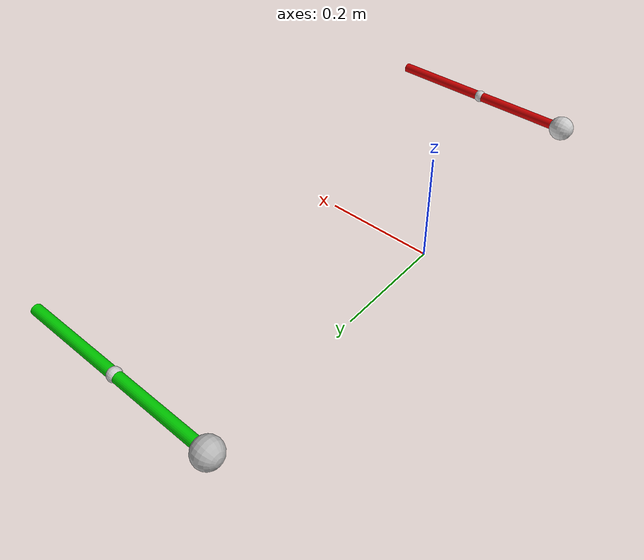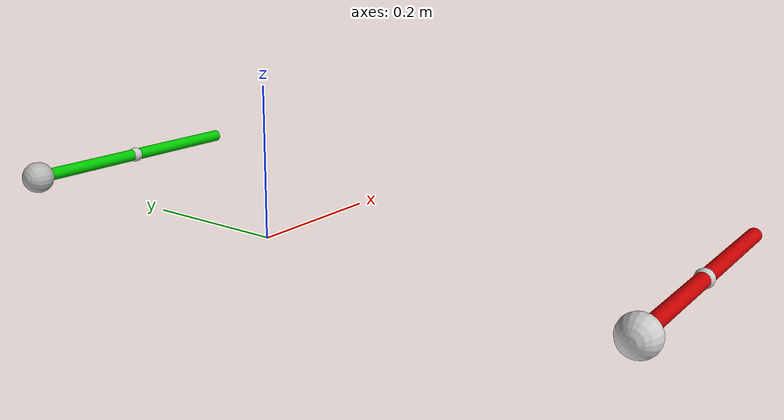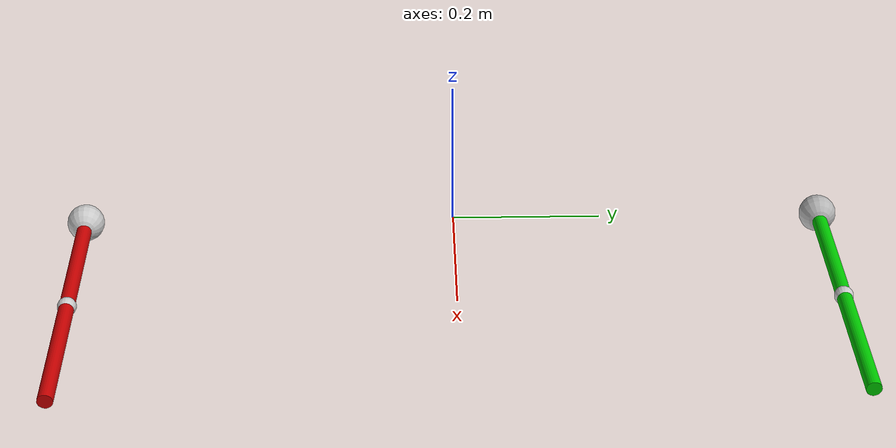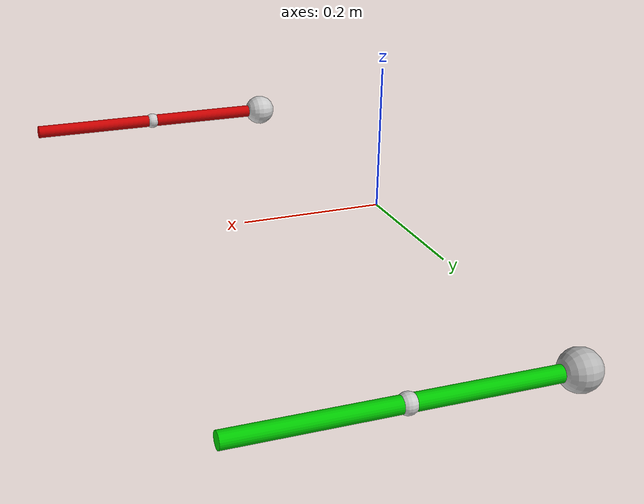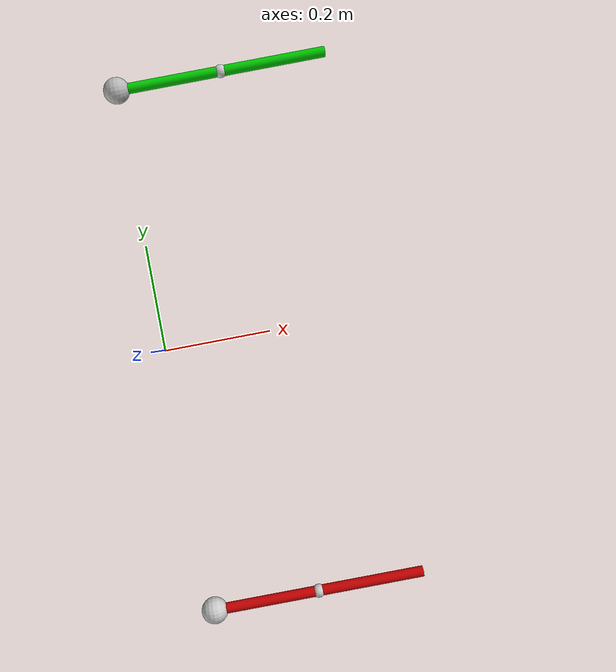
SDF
<?xml version="1.0" ?>
<sdf version="1.6">
  <world name="default">
    <!-- Physics -->
    <physics name="fast" type="ignored">
      <real_time_factor>0</real_time_factor>
    </physics>
    <plugin
      filename="gz-sim-physics-system"
      name="gz::sim::systems::Physics">
    </plugin>

    <!-- Scene -->
    <plugin
      filename="gz-sim-scene-broadcaster-system"
      name="gz::sim::systems::SceneBroadcaster">
    </plugin>
    <scene>
      <ambient>0.4 0.4 0.4</ambient>
      <grid>false</grid>
    </scene>

    <!-- Illumination -->
    <light type="directional" name="sun">
      <cast_shadows>false</cast_shadows>
      <pose>5 5 5 0 0 0</pose>
      <diffuse>0.8 0.8 0.8 1</diffuse>
      <specular>0.2 0.2 0.2 1</specular>
      <attenuation>
        <range>1000</range>
        <constant>0.9</constant>
        <linear>0.01</linear>
        <quadratic>0.001</quadratic>
      </attenuation>
      <direction>-1 -1 -1</direction>
    </light>

    <!-- Models -->
    <!-- Position control test -->
    <model name="RR_position_control">
      <pose>0 -0.5 0 0 1.5708 0</pose>
      <!-- Fix To World -->
      <joint name="RR_position_control_world" type="fixed">
        <parent>world</parent>
        <child>RR_position_control_link0</child>
      </joint>
      <!-- Links -->
      <link name="RR_position_control_link0">
        <collision name="RR_position_control_link0_collision_0">
          <geometry>
            <sphere>
              <radius>0.025</radius>
            </sphere>
          </geometry>
        </collision>
        <visual name="RR_position_control_link0_visual_0">
          <geometry>
            <sphere>
              <radius>0.025</radius>
            </sphere>
          </geometry>
          <material>
            <ambient>0.5 0.5 0.5 1</ambient>
            <diffuse>0.8 0.8 0.8 1</diffuse>
            <specular>0.8 0.8 0.8 1</specular>
          </material>
        </visual>
      </link>
      <link name="RR_position_control_link1">
        <pose relative_to="RR_position_control_joint1">0 0 0.1 0 0 0</pose>
        <collision name="RR_position_control_link1_collision_0">
          <geometry>
            <cylinder>
              <radius>0.01</radius>
              <length>0.2</length>
            </cylinder>
          </geometry>
        </collision>
        <collision name="RR_position_control_link1_collision_1">
          <geometry>
            <sphere>
              <radius>0.0125</radius>
            </sphere>
          </geometry>
        </collision>
        <visual name="RR_position_control_link1_visual_0">
          <geometry>
            <cylinder>
              <radius>0.01</radius>
              <length>0.2</length>
            </cylinder>
          </geometry>
          <material>
            <ambient>0.5 0 0 1</ambient>
            <diffuse>0.8 0 0 1</diffuse>
            <specular>0.8 0 0 1</specular>
          </material>
        </visual>
        <visual name="RR_position_control_link1_visual_1">
          <pose relative_to="RR_position_control_joint1">0 0 0.2 0 0 0</pose>
          <geometry>
            <sphere>
              <radius>0.0125</radius>
            </sphere>
          </geometry>
          <material>
            <ambient>0.5 0.5 0.5 1</ambient>
            <diffuse>0.8 0.8 0.8 1</diffuse>
            <specular>0.8 0.8 0.8 1</specular>
          </material>
        </visual>
        <inertial>
          <mass>0.1</mass>
          <inertia>
            <ixx>0.0003358</ixx>
            <iyy>0.0003358</iyy>
            <izz>0.000005</izz>
          </inertia>
        </inertial>
      </link>
      <link name="RR_position_control_link2">
        <pose relative_to="RR_position_control_joint2">0 0 0.1 0 0 0</pose>
        <collision name="RR_position_control_link2_collision">
          <geometry>
            <cylinder>
              <radius>0.01</radius>
              <length>0.2</length>
            </cylinder>
          </geometry>
        </collision>
        <visual name="RR_position_control_link2_visual">
          <geometry>
            <cylinder>
              <radius>0.01</radius>
              <length>0.2</length>
            </cylinder>
          </geometry>
          <material>
            <ambient>0.5 0 0 1</ambient>
            <diffuse>0.8 0 0 1</diffuse>
            <specular>0.8 0 0 1</specular>
          </material>
        </visual>
        <inertial>
          <mass>0.1</mass>
          <inertia>
            <ixx>0.0003358</ixx>
            <iyy>0.0003358</iyy>
            <izz>0.000005</izz>
          </inertia>
        </inertial>
      </link>
      <!-- Joints -->
      <joint name="RR_position_control_joint1" type="revolute">
        <pose relative_to="RR_position_control_link0">0 0 0 0 0 0</pose>
        <parent>RR_position_control_link0</parent>
        <child>RR_position_control_link1</child>
        <axis>
          <xyz>1 0 0</xyz>
          <dynamics>
            <damping>0.5</damping>
          </dynamics>
        </axis>
      </joint>
      <joint name="RR_position_control_joint2" type="revolute">
        <pose relative_to="RR_position_control_link1">0 0 0.1 0 0 0</pose>
        <parent>RR_position_control_link1</parent>
        <child>RR_position_control_link2</child>
        <axis>
          <xyz>1 0 0</xyz>
          <dynamics>
            <damping>0.25</damping>
          </dynamics>
        </axis>
      </joint>
      <!-- Controller -->
      <plugin
        filename="gz-sim-joint-trajectory-controller-system"
        name="gz::sim::systems::JointTrajectoryController">
        <!-- Test a case where joint names do not follow the order specified in model -->
        <joint_name>RR_position_control_joint2</joint_name>
        <position_p_gain>25</position_p_gain>
        <position_i_gain>400</position_i_gain>
        <position_d_gain>0.1</position_d_gain>
        <position_i_min>-0.5</position_i_min>
        <position_i_max>0.5</position_i_max>
        <position_cmd_min>-5</position_cmd_min>
        <position_cmd_max>5</position_cmd_max>

        <joint_name>RR_position_control_joint1</joint_name>
        <position_p_gain>50</position_p_gain>
        <position_i_gain>600</position_i_gain>
        <position_d_gain>0.8</position_d_gain>
        <position_i_min>-1</position_i_min>
        <position_i_max>1</position_i_max>
        <position_cmd_min>-10</position_cmd_min>
        <position_cmd_max>10</position_cmd_max>
      </plugin>
    </model>

    <!-- Velocity control test -->
    <model name="RR_velocity_control">
      <pose>0 0.5 0 0 1.5708 0</pose>
      <!-- Fix To World -->
      <joint name="RR_velocity_control_world" type="fixed">
        <parent>world</parent>
        <child>RR_velocity_control_link0</child>
      </joint>
      <!-- Links -->
      <link name="RR_velocity_control_link0">
        <collision name="RR_velocity_control_link0_collision_0">
          <geometry>
            <sphere>
              <radius>0.025</radius>
            </sphere>
          </geometry>
          <material>
            <ambient>0.5 0.5 0.5 1</ambient>
            <diffuse>0.8 0.8 0.8 1</diffuse>
            <specular>0.8 0.8 0.8 1</specular>
          </material>
        </collision>
        <visual name="RR_velocity_control_link0_visual_0">
          <geometry>
            <sphere>
              <radius>0.025</radius>
            </sphere>
          </geometry>
        </visual>
      </link>
      <link name="RR_velocity_control_link1">
        <pose relative_to="RR_velocity_control_joint1">0 0 0.1 0 0 0</pose>
        <collision name="RR_velocity_control_link1_collision_0">
          <geometry>
            <cylinder>
              <radius>0.01</radius>
              <length>0.2</length>
            </cylinder>
          </geometry>
        </collision>
        <collision name="RR_velocity_control_link1_collision_1">
          <geometry>
            <sphere>
              <radius>0.0125</radius>
            </sphere>
          </geometry>
        </collision>
        <visual name="RR_velocity_control_link1_visual_0">
          <geometry>
            <cylinder>
              <radius>0.01</radius>
              <length>0.2</length>
            </cylinder>
          </geometry>
          <material>
            <ambient>0 0.5 0 1</ambient>
            <diffuse>0 0.8 0 1</diffuse>
            <specular>0 0.8 0 1</specular>
          </material>
        </visual>
        <visual name="RR_velocity_control_link1_visual_1">
          <pose relative_to="RR_velocity_control_joint1">0 0 0.2 0 0 0</pose>
          <geometry>
            <sphere>
              <radius>0.0125</radius>
            </sphere>
          </geometry>
          <material>
            <ambient>0.5 0.5 0.5 1</ambient>
            <diffuse>0.8 0.8 0.8 1</diffuse>
            <specular>0.8 0.8 0.8 1</specular>
          </material>
        </visual>
        <inertial>
          <mass>0.1</mass>
          <inertia>
            <ixx>0.0003358</ixx>
            <iyy>0.0003358</iyy>
            <izz>0.000005</izz>
          </inertia>
        </inertial>
      </link>
      <link name="RR_velocity_control_link2">
        <pose relative_to="RR_velocity_control_joint2">0 0 0.1 0 0 0</pose>
        <collision name="RR_velocity_control_link2_collision">
          <geometry>
            <cylinder>
              <radius>0.01</radius>
              <length>0.2</length>
            </cylinder>
          </geometry>
        </collision>
        <visual name="RR_velocity_control_link2_visual">
          <geometry>
            <cylinder>
              <radius>0.01</radius>
              <length>0.2</length>
            </cylinder>
          </geometry>
          <material>
            <ambient>0 0.5 0 1</ambient>
            <diffuse>0 0.8 0 1</diffuse>
            <specular>0 0.8 0 1</specular>
          </material>
        </visual>
        <inertial>
          <mass>0.1</mass>
          <inertia>
            <ixx>0.0003358</ixx>
            <iyy>0.0003358</iyy>
            <izz>0.000005</izz>
          </inertia>
        </inertial>
      </link>
      <!-- Joints -->
      <joint name="RR_velocity_control_joint1" type="revolute">
        <pose relative_to="RR_velocity_control_link0">0 0 0 0 0 0</pose>
        <parent>RR_velocity_control_link0</parent>
        <child>RR_velocity_control_link1</child>
        <axis>
          <xyz>1 0 0</xyz>
          <dynamics>
            <damping>0.02</damping>
          </dynamics>
        </axis>
      </joint>
      <joint name="RR_velocity_control_joint2" type="revolute">
        <pose relative_to="RR_velocity_control_link1">0 0 0.1 0 0 0</pose>
        <parent>RR_velocity_control_link1</parent>
        <child>RR_velocity_control_link2</child>
        <axis>
          <xyz>1 0 0</xyz>
          <dynamics>
            <damping>0.01</damping>
          </dynamics>
        </axis>
      </joint>
      <!-- Controller -->
      <plugin
        filename="gz-sim-joint-trajectory-controller-system"
        name="gz::sim::systems::JointTrajectoryController">
        <!-- Test custom topic name -->
        <topic>test_custom_topic/velocity_control</topic>

        <!-- Test a case where joint names are omitted. These gains will cause the test to fail
        if they are applied in the reversed order -->
        <velocity_p_gain>0.6</velocity_p_gain>
        <velocity_i_gain>175</velocity_i_gain>
        <velocity_cmd_min>-10</velocity_cmd_min>
        <velocity_cmd_max>10</velocity_cmd_max>

        <velocity_p_gain>0.1</velocity_p_gain>
        <velocity_i_gain>200</velocity_i_gain>
        <velocity_cmd_min>-5</velocity_cmd_min>
        <velocity_cmd_max>5</velocity_cmd_max>
      </plugin>
    </model>

  </world>
</sdf>
